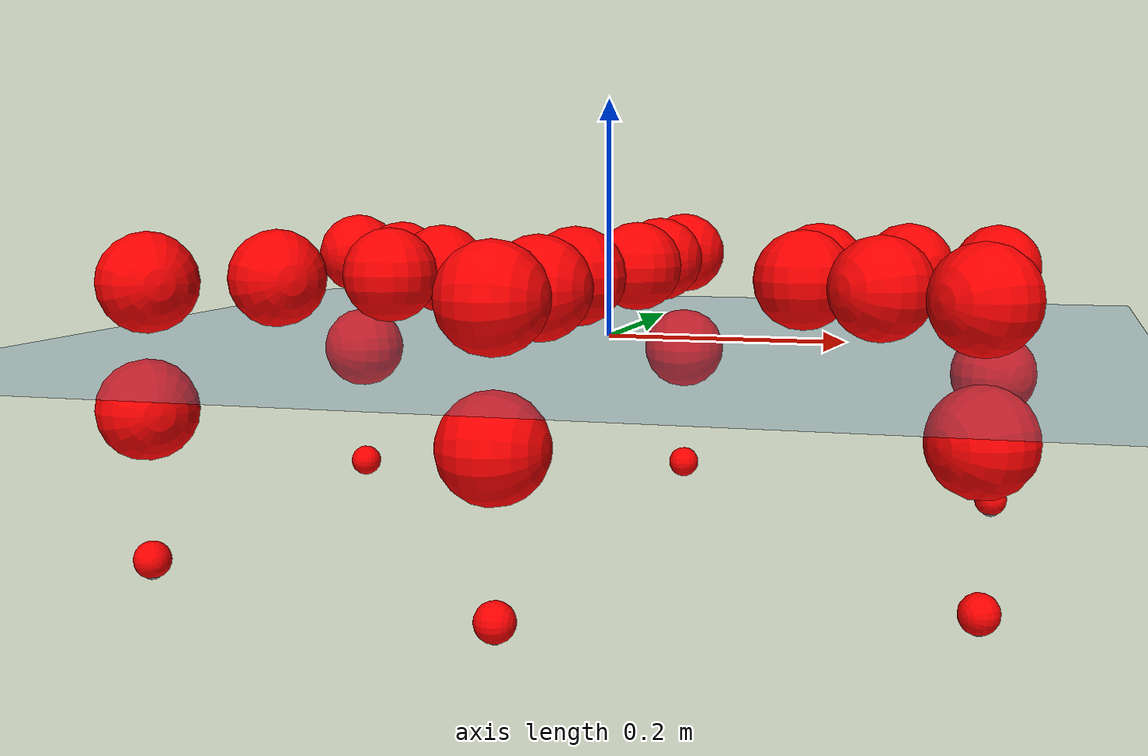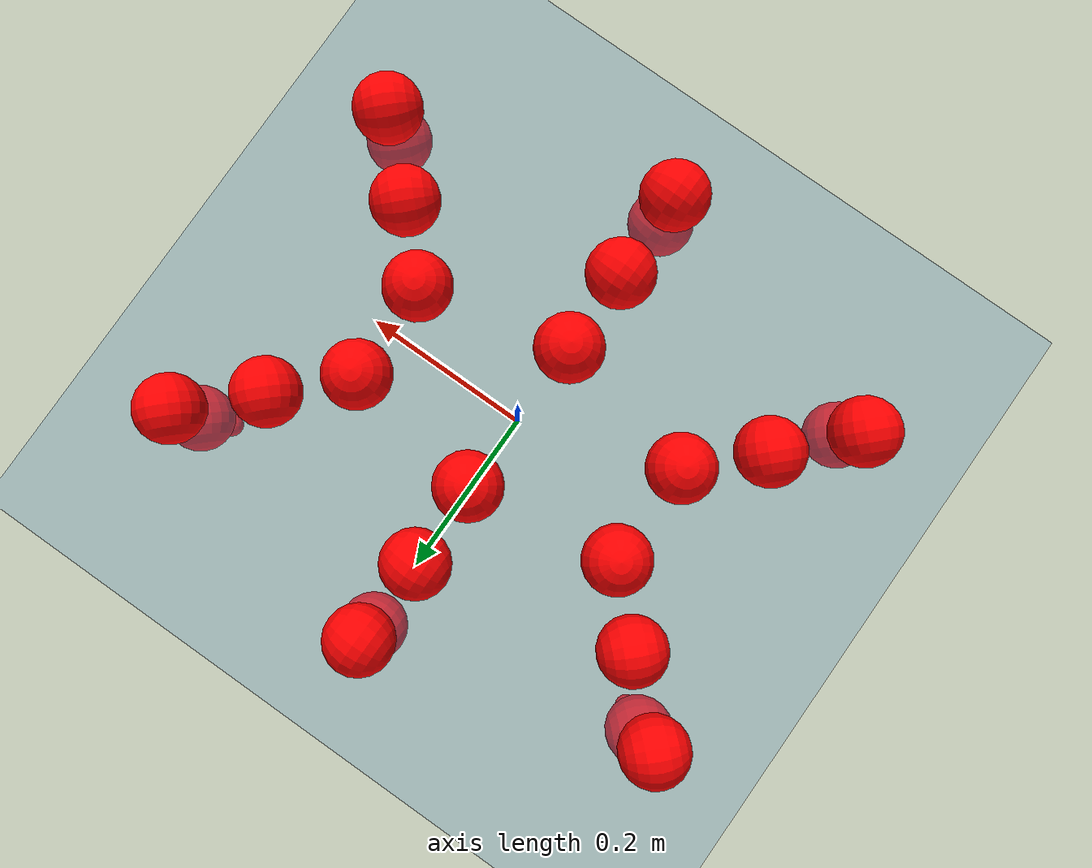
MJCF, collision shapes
<mujoco model="Golem">
  <compiler angle="radian" assetdir="assets" balanceinertia="true" inertiafromgeom="false"/>

  <option timestep="0.005" density="1.2" viscosity="2e-05"/>

  <size nkey="1"/>

  <visual>
    <quality shadowsize="8192"/>
    <map shadowclip="0.5"/>
  </visual>

  <default>
    <default class="/">
      <joint armature="0.01" damping="0.01" frictionloss="0.01"/>
      <geom contype="0" conaffinity="0" group="1" solref="-1000 -80"/>
      <site size="0.01 0.005 0.005" group="5"/>
      <general forcelimited="true" biastype="affine" gainprm="25" biasprm="0 -25 -0.5"/>
      <default class="visual">
        <geom type="mesh" group="2"/>
      </default>
      <default class="collision">
        <geom group="3"/>
      </default>
      <default class="foot">
        <geom size="0.01 0 0" condim="6" group="4" priority="1" solimp="0.015 1 0.01"/>
      </default>
      <default class="reward_collision_sphere">
        <geom group="5" rgba="1 0 0 1"/>
      </default>
    </default>
  </default>

  <asset>
    <texture type="skybox" colorspace="auto" name="//unnamed_texture_0" builtin="gradient" rgb1="0.95 0.95 0.95" rgb2="0.95 0.95 0.95" width="100" height="600"/>
    <texture type="2d" colorspace="auto" name="texplane" builtin="checker" rgb1="0.345 0.575 0.748" rgb2="0.345 0.575 0.748" markrgb="1 1 1" width="512" height="512"/>
    <material name="MatPlane" class="/" texture="texplane" texuniform="true" texrepeat="2 2" specular="0.9"/>
    <mesh name="body" class="/" file="body.stl" scale="0.001 0.001 0.001"/>
    <mesh name="coxa" class="/" file="coxa.stl" scale="0.001 0.001 0.001"/>
    <mesh name="femur" class="/" file="femur.stl" scale="0.001 0.001 0.001"/>
    <mesh name="tibia" class="/" file="tibia.stl" scale="0.001 0.001 0.001"/>
    <mesh name="tarsus" class="/" file="tarsus.stl" scale="0.001 0.001 0.001"/>
  </asset>

  <worldbody>
    <geom name="floor" class="/" size="100 100 0.125" type="plane" group="0" material="MatPlane"/>
    <light name="toplight_shadow" class="/" pos="0 0 5" dir="0.0990148 0.0990148 -0.990148" type="directional" ambient="0.04 0.04 0.04" diffuse="0.55 0.55 0.55" specular="0.12 0.12 0.12"/>
    <light name="toplight_fill" class="/" pos="0 0 5" dir="0.0990148 0.0990148 -0.990148" type="directional" castshadow="false" ambient="0.04 0.04 0.04" diffuse="0.3 0.3 0.3" specular="0.08 0.08 0.08"/>
    <body name="trunk" pos="-0.00204721 0.00222395 -0.00259461" quat="0.999999 0.000178422 -0.00126227 -0.000250516">
      <inertial pos="-2.50066e-05 0.00235237 -0.00727914" quat="0.999964 -0.00445973 0.00664279 0.00284157" mass="3.40957" diaginertia="0.0158783 0.00831944 0.00608381"/>
      <joint name="//unnamed_joint_0" type="free"/>
      <geom name="//unnamed_geom_1" class="/" pos="0 0 0.0584153" quat="1 0 0 0" type="mesh" rgba="0.9 0.9 0.9 1" mesh="body"/>
      <site name="imu" class="/" pos="0.149318 0.00979684 0.103027" size="0.00998458"/>
      <camera name="track" class="/" pos="0 -1.93763 0" quat="0.707107 0.707107 0 0" mode="trackcom"/>
      <camera name="ego_camera" class="/" pos="0.144797 0 0.0912738" quat="-0.5 -0.5 0.5 0.5"/>
      <body name="coxa_RR" pos="-0.198282 -0.0829021 0.0559772" quat="0.38308 0.00010288 -0.000217398 -0.923715">
        <inertial pos="0.000405597 -0.00143024 0.00056792" quat="0.99999 0.00293903 -0.00322629 -0.00105546" mass="0.191935" diaginertia="0.0168264 0.00817725 0.00639602"/>
        <joint name="coxa_joint_RR" class="/" pos="0 0 0" axis="0.00408079 0.0207408 -0.999777" range="-3.15618 3.12891" armature="0.0110306" damping="0.000973323" frictionloss="0.0102015"/>
        <geom name="//unnamed_geom_2" class="/" type="mesh" rgba="0.2 0.2 0.2 1" mesh="coxa"/>
        <geom name="//unnamed_geom_3" class="reward_collision_sphere" size="0.0399383" pos="-0.0334146 0 0"/>
        <body name="femur_RR" pos="0.0648912 0.00103966 0.000951944" quat="0.500217 -0.499551 0.500135 0.500098">
          <inertial pos="0.00268185 -0.00104024 -0.00135049" quat="0.999997 0.00100687 0.00161983 0.0011833" mass="0.196446" diaginertia="0.0168818 0.00860488 0.00658196"/>
          <joint name="femur_joint_RR" class="/" pos="0 0 0" axis="-0.00602967 0.00550551 -0.999967" range="-3.14228 3.19095" armature="0.00987671" damping="0" frictionloss="0.0110876"/>
          <geom name="//unnamed_geom_4" class="/" type="mesh" rgba="0.9 0.9 0.9 1" mesh="femur"/>
          <geom name="//unnamed_geom_5" class="reward_collision_sphere" size="0.0399383"/>
          <body name="tibia_RR" pos="-0.000968378 -0.105159 0.00400562" quat="0.000257182 1 8.304e-06 1.37832e-05">
            <inertial pos="-0.000605185 0.00289142 0.000348183" quat="0.999888 -0.0114428 0.00960308 -0.000989516" mass="0.19949" diaginertia="0.0169457 0.00866264 0.00655784"/>
            <joint name="tibia_joint_RR" class="/" pos="0 0 0" axis="0.00114793 0.00384519 0.999992" range="-3.12487 3.08701" armature="0.0103741" damping="0.0162161" frictionloss="0.00874368"/>
            <geom name="//unnamed_geom_6" class="/" type="mesh" rgba="0.2 0.2 0.2 1" mesh="tibia"/>
            <geom name="//unnamed_geom_7" class="reward_collision_sphere" size="0.0399383"/>
            <body name="tarsus_RR" pos="0.0993598 0.00330917 -0.00165363" quat="1 -0.000278178 0.000508225 0.000459077">
              <inertial pos="0.0675205 0.00132308 -0.0006287" quat="0.494263 0.500759 0.50674 0.498156" mass="0.192878" diaginertia="0.0161595 0.00843768 0.00630132"/>
              <joint name="tarsus_joint_RR" class="/" pos="0 0 0" axis="-0.000894586 -0.00218717 0.999997" range="-3.15451 3.0968" armature="0.00858638" damping="0.0145805" frictionloss="0.00979562"/>
              <geom name="//unnamed_geom_8" class="/" type="mesh" rgba="0.9 0.9 0.9 1" mesh="tarsus"/>
              <geom name="foot_1" class="foot" size="0.0106485" pos="0.124748 0 0" quat="0 -0.707107 0 0.707107"/>
              <geom name="//unnamed_geom_10" class="reward_collision_sphere" size="0.0399383"/>
              <geom name="//unnamed_geom_11" class="reward_collision_sphere" size="0.0149769" pos="0.119736 0 0"/>
              <site name="foot_1" class="foot" pos="0.124748 0 0" quat="0 -0.707107 0 0.707107" size="0.00998458"/>
            </body>
          </body>
        </body>
      </body>
      <body name="coxa_RM" pos="-7.34254e-05 -0.129915 0.0600312" quat="0.706373 0.000337657 -0.00178871 -0.707837">
        <inertial pos="0.000521235 -0.000611326 0.00123154" quat="0.999999 -0.001036 0.000634817 -0.000420318" mass="0.191748" diaginertia="0.0172494 0.00842281 0.00626321"/>
        <joint name="coxa_joint_RM" class="/" pos="0 0 0" axis="0.00370503 0.00826745 -0.999959" stiffness="0.00379558" range="-3.12456 3.15559" armature="0.0100628" damping="0.00677047" frictionloss="0.0112438"/>
        <geom name="//unnamed_geom_12" class="/" type="mesh" rgba="0.2 0.2 0.2 1" mesh="coxa"/>
        <geom name="//unnamed_geom_13" class="reward_collision_sphere" size="0.0399383" pos="-0.0334146 0 0"/>
        <body name="femur_RM" pos="0.0667658 0.00121434 -0.00194366" quat="0.4999 -0.500207 0.500651 0.499241">
          <inertial pos="-0.00280283 -0.00136034 -0.000876563" quat="0.999916 0.000969076 -0.0103018 -0.00776621" mass="0.204312" diaginertia="0.0179785 0.00870449 0.00671913"/>
          <joint name="femur_joint_RM" class="/" pos="0 0 0" axis="-0.000738797 0.000417813 -1" stiffness="0.00204466" range="-3.12727 3.18194" armature="0.0113195" damping="0.0117844" frictionloss="0.00915236"/>
          <geom name="//unnamed_geom_14" class="/" type="mesh" rgba="0.9 0.9 0.9 1" mesh="femur"/>
          <geom name="//unnamed_geom_15" class="reward_collision_sphere" size="0.0399383"/>
          <body name="tibia_RM" pos="-0.00130694 -0.105364 0.00110482" quat="-0.00032271 1 -0.000479355 -0.000156181">
            <inertial pos="-0.00111536 -0.00394797 0.000941876" quat="0.999979 -0.000128693 -0.00576708 0.00288599" mass="0.201227" diaginertia="0.0167778 0.00828778 0.00620149"/>
            <joint name="tibia_joint_RM" class="/" pos="0 0 0" axis="-0.00275711 -0.00767485 0.999967" range="-3.14172 3.15932" armature="0.00866693" damping="0" frictionloss="0.0100236"/>
            <geom name="//unnamed_geom_16" class="/" type="mesh" rgba="0.2 0.2 0.2 1" mesh="tibia"/>
            <geom name="//unnamed_geom_17" class="reward_collision_sphere" size="0.0399383"/>
            <body name="tarsus_RM" pos="0.101691 -0.0012515 0.000564211" quat="1 3.04284e-05 -0.000108451 -2.53309e-05">
              <inertial pos="0.065489 -0.000554111 0.00294081" quat="0.500393 0.499788 0.499844 0.499975" mass="0.188623" diaginertia="0.0170791 0.00834031 0.00603198"/>
              <joint name="tarsus_joint_RM" class="/" pos="0 0 0" axis="0.00823009 -0.0101998 0.999914" range="-3.13591 3.15479" armature="0.0104708" damping="0.00859266" frictionloss="0.0100828"/>
              <geom name="//unnamed_geom_18" class="/" type="mesh" rgba="0.9 0.9 0.9 1" mesh="tarsus"/>
              <geom name="foot_2" class="foot" size="0.0103565" pos="0.124748 0 0" quat="0 -0.707107 0 0.707107"/>
              <geom name="//unnamed_geom_20" class="reward_collision_sphere" size="0.0399383"/>
              <geom name="//unnamed_geom_21" class="reward_collision_sphere" size="0.0149769" pos="0.119736 0 0"/>
              <site name="foot_2" class="foot" pos="0.124748 0 0" quat="0 -0.707107 0 0.707107" size="0.00998458"/>
            </body>
          </body>
        </body>
      </body>
      <body name="coxa_RF" pos="0.198715 -0.0800871 0.0570504" quat="0.923936 0.00108194 -0.000870223 -0.382544">
        <inertial pos="-0.00242524 0.00231213 -0.000170682" quat="0.999943 0.00369965 0.00288633 0.00955081" mass="0.199586" diaginertia="0.016535 0.00848676 0.00628893"/>
        <joint name="coxa_joint_RF" class="/" pos="0 0 0" axis="0.00139391 0.00538159 -0.999985" stiffness="0.00390276" range="-3.19199 3.17435" armature="0.0104965" damping="0.00391997" frictionloss="0.0102172"/>
        <geom name="//unnamed_geom_22" class="/" type="mesh" rgba="0.2 0.2 0.2 1" mesh="coxa"/>
        <geom name="//unnamed_geom_23" class="reward_collision_sphere" size="0.0399383" pos="-0.0334146 0 0"/>
        <body name="femur_RF" pos="0.0636535 -0.0019595 -0.000333881" quat="0.500041 -0.500093 0.499977 0.499889">
          <inertial pos="-0.000159213 -0.00226785 0.00020402" quat="0.999913 -0.0111521 0.00703553 0.000934403" mass="0.196122" diaginertia="0.0160444 0.00811246 0.00588643"/>
          <joint name="femur_joint_RF" class="/" pos="0 0 0" axis="-0.00537712 -0.00263207 -0.999982" stiffness="0.00103518" range="-3.15613 3.09906" armature="0.01004" damping="0.000357392" frictionloss="0.00898518"/>
          <geom name="//unnamed_geom_24" class="/" type="mesh" rgba="0.9 0.9 0.9 1" mesh="femur"/>
          <geom name="//unnamed_geom_25" class="reward_collision_sphere" size="0.0399383"/>
          <body name="tibia_RF" pos="0.000499159 -0.106422 0.00188959" quat="-0.000308217 1 -5.2891e-05 -0.000338241">
            <inertial pos="-0.000237185 0.000409438 0.00348703" quat="0.999979 -0.00375725 -0.00206614 0.0049174" mass="0.195128" diaginertia="0.0160384 0.0084552 0.00609146"/>
            <joint name="tibia_joint_RF" class="/" pos="0 0 0" axis="-0.00848326 0.00607866 0.999946" range="-3.1336 3.17142" armature="0.00976456" damping="0.0100809" frictionloss="0.010748"/>
            <geom name="//unnamed_geom_26" class="/" type="mesh" rgba="0.2 0.2 0.2 1" mesh="tibia"/>
            <geom name="//unnamed_geom_27" class="reward_collision_sphere" size="0.0399383"/>
            <body name="tarsus_RF" pos="0.0975822 0.000351508 0.00101032" quat="1 4.28863e-05 2.88792e-05 5.53549e-06">
              <inertial pos="0.0648976 0.00239831 0.00244462" quat="0.499795 0.500251 0.498733 0.501218" mass="0.204299" diaginertia="0.0168353 0.00886399 0.00669006"/>
              <joint name="tarsus_joint_RF" class="/" pos="0 0 0" axis="-0.00558116 0.00406848 0.999976" stiffness="0.0291456" range="-3.14782 3.13116" armature="0.0112875" damping="0.0212515" frictionloss="0.0111133"/>
              <geom name="//unnamed_geom_28" class="/" type="mesh" rgba="0.9 0.9 0.9 1" mesh="tarsus"/>
              <geom name="foot_3" class="foot" size="0.0103614" pos="0.124748 0 0" quat="0 -0.707107 0 0.707107"/>
              <geom name="//unnamed_geom_30" class="reward_collision_sphere" size="0.0399383"/>
              <geom name="//unnamed_geom_31" class="reward_collision_sphere" size="0.0149769" pos="0.119736 0 0"/>
              <site name="foot_3" class="foot" pos="0.124748 0 0" quat="0 -0.707107 0 0.707107" size="0.00998458"/>
            </body>
          </body>
        </body>
      </body>
      <body name="coxa_LR" pos="-0.198334 0.0857349 0.0536513" quat="0.382946 0.0009121 -0.000162184 0.92377">
        <inertial pos="-0.000201789 0.000223937 0.00172014" quat="1 -0.000300234 0.000125151 -0.000349765" mass="0.20388" diaginertia="0.0162864 0.00849193 0.00660659"/>
        <joint name="coxa_joint_LR" class="/" pos="0 0 0" axis="0.00721835 -0.0046349 -0.999963" stiffness="0.00513672" range="-3.16908 3.18162" armature="0.0111096" damping="0" frictionloss="0.0101617"/>
        <geom name="//unnamed_geom_32" class="/" type="mesh" rgba="0.2 0.2 0.2 1" mesh="coxa"/>
        <geom name="//unnamed_geom_33" class="reward_collision_sphere" size="0.0399383" pos="-0.0334146 0 0"/>
        <body name="femur_LR" pos="0.0646684 -0.000997531 -0.000274444" quat="0.499292 -0.501396 0.499659 0.499651">
          <inertial pos="0.00125832 0.00416605 0.00164565" quat="1 0.000149698 0.0003062 0.000414393" mass="0.199817" diaginertia="0.01766 0.00855201 0.00656826"/>
          <joint name="femur_joint_LR" class="/" pos="0 0 0" axis="0.00234039 -0.000336198 0.999997" range="-3.17502 3.14724" armature="0.00929772" damping="0.0343338" frictionloss="0.0100437"/>
          <geom name="//unnamed_geom_34" class="/" type="mesh" rgba="0.9 0.9 0.9 1" mesh="femur"/>
          <geom name="//unnamed_geom_35" class="reward_collision_sphere" size="0.0399383"/>
          <body name="tibia_LR" pos="-0.00369789 -0.106419 0.00353055" quat="0.000120564 1 -0.00079237 -0.000128534">
            <inertial pos="0.00153173 0.000279904 -0.00107925" quat="0.999978 0.00204141 0.00625455 0.000310322" mass="0.209777" diaginertia="0.0178104 0.00865899 0.00651116"/>
            <joint name="tibia_joint_LR" class="/" pos="0 0 0" axis="0.0108061 -0.0103746 -0.999888" stiffness="0.0105681" range="-3.10766 3.09995" armature="0.0113059" damping="0" frictionloss="0.010032"/>
            <geom name="//unnamed_geom_36" class="/" type="mesh" rgba="0.2 0.2 0.2 1" mesh="tibia"/>
            <geom name="//unnamed_geom_37" class="reward_collision_sphere" size="0.0399383"/>
            <body name="tarsus_LR" pos="0.0971908 0.00104489 0.00378596" quat="1 4.91049e-06 8.84997e-05 8.16123e-05">
              <inertial pos="0.062232 0.00292464 0.00184628" quat="0.498762 0.50538 0.504986 0.49073" mass="0.196278" diaginertia="0.017449 0.0082535 0.00639498"/>
              <joint name="tarsus_joint_LR" class="/" pos="0 0 0" axis="0.00366572 -0.0089353 -0.999953" stiffness="0.00817515" range="-3.18598 3.11203" armature="0.00977529" damping="0.0144738" frictionloss="0.00933613"/>
              <geom name="//unnamed_geom_38" class="/" type="mesh" rgba="0.9 0.9 0.9 1" mesh="tarsus"/>
              <geom name="foot_4" class="foot" size="0.00853868" pos="0.124748 0 0" quat="0.707107 0 -0.707107 0"/>
              <geom name="//unnamed_geom_40" class="reward_collision_sphere" size="0.0399383"/>
              <geom name="//unnamed_geom_41" class="reward_collision_sphere" size="0.0149769" pos="0.119736 0 0"/>
              <site name="foot_4" class="foot" pos="0.124748 0 0" quat="0.707107 0 -0.707107 0" size="0.00998458"/>
            </body>
          </body>
        </body>
      </body>
      <body name="coxa_LM" pos="0.00325278 0.123562 0.0563229" quat="0.707365 -0.000141197 0.000236227 0.706849">
        <inertial pos="-0.00213944 -0.000305852 0.0027112" quat="0.999975 -0.00581884 -0.00382197 0.000958733" mass="0.192268" diaginertia="0.0169728 0.00813659 0.00604559"/>
        <joint name="coxa_joint_LM" class="/" pos="0 0 0" axis="0.0107768 0.0153671 -0.999824" range="-3.14737 3.18951" armature="0.0112211" damping="0.00501288" frictionloss="0.0105802"/>
        <geom name="//unnamed_geom_42" class="/" type="mesh" rgba="0.2 0.2 0.2 1" mesh="coxa"/>
        <geom name="//unnamed_geom_43" class="reward_collision_sphere" size="0.0399383" pos="-0.0334146 0 0"/>
        <body name="femur_LM" pos="0.0671896 0.00223491 0.000472562" quat="0.499835 -0.500091 0.50018 0.499894">
          <inertial pos="0.000354047 -0.00225608 -0.0027082" quat="1 7.13223e-05 -0.00016293 -0.000289541" mass="0.204341" diaginertia="0.0175193 0.00820979 0.0061135"/>
          <joint name="femur_joint_LM" class="/" pos="0 0 0" axis="-0.00140345 0.00184447 0.999997" stiffness="0.00976936" range="-3.08652 3.15835" armature="0.00889952" damping="0.0122332" frictionloss="0.00971532"/>
          <geom name="//unnamed_geom_44" class="/" type="mesh" rgba="0.9 0.9 0.9 1" mesh="femur"/>
          <geom name="//unnamed_geom_45" class="reward_collision_sphere" size="0.0399383"/>
          <body name="tibia_LM" pos="-0.00105811 -0.0998643 -0.00212394" quat="0.000243392 1 0.000335091 2.81981e-06">
            <inertial pos="0.00107047 -0.000518353 0.00121834" quat="0.999961 0.00261924 -0.00830924 -0.00159509" mass="0.193305" diaginertia="0.0167191 0.00797943 0.0059751"/>
            <joint name="tibia_joint_LM" class="/" pos="0 0 0" axis="-0.00397453 0.00794086 -0.999961" stiffness="0.0151683" range="-3.12639 3.13987" armature="0.0104119" damping="0.010763" frictionloss="0.0102673"/>
            <geom name="//unnamed_geom_46" class="/" type="mesh" rgba="0.2 0.2 0.2 1" mesh="tibia"/>
            <geom name="//unnamed_geom_47" class="reward_collision_sphere" size="0.0399383"/>
            <body name="tarsus_LM" pos="0.0987003 -0.000813799 -0.000382142" quat="1 0.000202597 0.000425921 0.000486995">
              <inertial pos="0.0678314 0.000247761 0.00171713" quat="0.497703 0.507885 0.498698 0.495625" mass="0.192414" diaginertia="0.0160789 0.00813989 0.00622602"/>
              <joint name="tarsus_joint_LM" class="/" pos="0 0 0" axis="-0.0149896 -0.00865868 -0.99985" range="-3.11633 3.12149" armature="0.00957337" damping="0.0169997" frictionloss="0.00913369"/>
              <geom name="//unnamed_geom_48" class="/" type="mesh" rgba="0.9 0.9 0.9 1" mesh="tarsus"/>
              <geom name="foot_5" class="foot" size="0.00986737" pos="0.124748 0 0" quat="0.707107 0 -0.707107 0"/>
              <geom name="//unnamed_geom_50" class="reward_collision_sphere" size="0.0399383"/>
              <geom name="//unnamed_geom_51" class="reward_collision_sphere" size="0.0149769" pos="0.119736 0 0"/>
              <site name="foot_5" class="foot" pos="0.124748 0 0" quat="0.707107 0 -0.707107 0" size="0.00998458"/>
            </body>
          </body>
        </body>
      </body>
      <body name="coxa_LF" pos="0.195986 0.0845219 0.057688" quat="0.923866 3.62524e-05 0.00121545 0.382715">
        <inertial pos="-0.00113976 -8.28357e-05 -0.0011875" quat="1 -0.000197616 -7.05431e-05 -4.33916e-05" mass="0.196377" diaginertia="0.0175321 0.00831508 0.00626683"/>
        <joint name="coxa_joint_LF" class="/" pos="0 0 0" axis="0.00262912 0.00105552 -0.999996" stiffness="0.00472474" range="-3.18073 3.14419" armature="0.0102738" damping="0.00499361" frictionloss="0.00799669"/>
        <geom name="//unnamed_geom_52" class="/" type="mesh" rgba="0.2 0.2 0.2 1" mesh="coxa"/>
        <geom name="//unnamed_geom_53" class="reward_collision_sphere" size="0.0399383" pos="-0.0334146 0 0"/>
        <body name="femur_LF" pos="0.0671262 0.00166252 -0.00191663" quat="0.499169 -0.500281 0.500583 0.499965">
          <inertial pos="0.00365796 0.00124973 -0.00409084" quat="0.999992 0.00148776 -0.00215837 -0.00291928" mass="0.194163" diaginertia="0.0167299 0.00870893 0.0062776"/>
          <joint name="femur_joint_LF" class="/" pos="0 0 0" axis="0.000532704 -0.00213006 0.999998" stiffness="0.00827939" range="-3.14048 3.13179" armature="0.0105807" damping="0.0169827" frictionloss="0.0112658"/>
          <geom name="//unnamed_geom_54" class="/" type="mesh" rgba="0.9 0.9 0.9 1" mesh="femur"/>
          <geom name="//unnamed_geom_55" class="reward_collision_sphere" size="0.0399383"/>
          <body name="tibia_LF" pos="0.00342742 -0.107623 -0.000325918" quat="9.99211e-05 1 0.000576863 -0.000193034">
            <inertial pos="-0.00209641 0.00363557 -0.00156483" quat="1 8.24665e-05 -2.33874e-05 -2.52734e-05" mass="0.21597" diaginertia="0.0187506 0.00904905 0.00688603"/>
            <joint name="tibia_joint_LF" class="/" pos="0 0 0" axis="-0.00152378 -0.00327103 -0.999993" range="-3.12574 3.17047" armature="0.0102739" damping="0.00428931" frictionloss="0.00971267"/>
            <geom name="//unnamed_geom_56" class="/" type="mesh" rgba="0.2 0.2 0.2 1" mesh="tibia"/>
            <geom name="//unnamed_geom_57" class="reward_collision_sphere" size="0.0399383"/>
            <body name="tarsus_LF" pos="0.0996632 0.000449453 -0.00306103" quat="0.999999 0.000859458 -0.000563987 0.000157808">
              <inertial pos="0.0694392 0.00176301 -0.00222566" quat="0.502113 0.497005 0.502498 0.498361" mass="0.208609" diaginertia="0.0184744 0.00898334 0.00681021"/>
              <joint name="tarsus_joint_LF" class="/" pos="0 0 0" axis="0.0123013 0.00327553 -0.999919" stiffness="0.00217377" range="-3.0929 3.1395" armature="0.00979653" damping="0.0222036" frictionloss="0.0116193"/>
              <geom name="//unnamed_geom_58" class="/" type="mesh" rgba="0.9 0.9 0.9 1" mesh="tarsus"/>
              <geom name="foot_6" class="foot" size="0.010942" pos="0.124748 0 0" quat="0.707107 0 -0.707107 0"/>
              <geom name="//unnamed_geom_60" class="reward_collision_sphere" size="0.0399383"/>
              <geom name="//unnamed_geom_61" class="reward_collision_sphere" size="0.0149769" pos="0.119736 0 0"/>
              <site name="foot_6" class="foot" pos="0.124748 0 0" quat="0.707107 0 -0.707107 0" size="0.00998458"/>
            </body>
          </body>
        </body>
      </body>
    </body>
  </worldbody>

  <contact>
    <pair class="/" geom1="floor" geom2="foot_1" name="//unnamed_contact_0"/>
    <pair class="/" geom1="floor" geom2="foot_2" name="//unnamed_contact_1"/>
    <pair class="/" geom1="floor" geom2="foot_3" name="//unnamed_contact_2"/>
    <pair class="/" geom1="floor" geom2="foot_4" name="//unnamed_contact_3"/>
    <pair class="/" geom1="floor" geom2="foot_5" name="//unnamed_contact_4"/>
    <pair class="/" geom1="floor" geom2="foot_6" name="//unnamed_contact_5"/>
  </contact>

  <actuator>
    <general name="coxa_joint_RR" class="/" joint="coxa_joint_RR" forcerange="-6.59227 6.59227" gainprm="23.7524" biasprm="0 -23.7524 -0.467831"/>
    <general name="femur_joint_RR" class="/" joint="femur_joint_RR" forcerange="-6.97792 6.97792" gainprm="23.7524" biasprm="0 -23.7524 -0.467831"/>
    <general name="tibia_joint_RR" class="/" joint="tibia_joint_RR" forcerange="-6.56744 6.56744" gainprm="23.7524" biasprm="0 -23.7524 -0.467831"/>
    <general name="tarsus_joint_RR" class="/" joint="tarsus_joint_RR" forcerange="-6.88828 6.88828" gainprm="23.7524" biasprm="0 -23.7524 -0.467831"/>
    <general name="coxa_joint_RM" class="/" joint="coxa_joint_RM" forcerange="-7.63527 7.63527" gainprm="23.7524" biasprm="0 -23.7524 -0.467831"/>
    <general name="femur_joint_RM" class="/" joint="femur_joint_RM" forcerange="-7.36348 7.36348" gainprm="23.7524" biasprm="0 -23.7524 -0.467831"/>
    <general name="tibia_joint_RM" class="/" joint="tibia_joint_RM" forcerange="-7.05124 7.05124" gainprm="23.7524" biasprm="0 -23.7524 -0.467831"/>
    <general name="tarsus_joint_RM" class="/" joint="tarsus_joint_RM" forcerange="-6.49902 6.49902" gainprm="23.7524" biasprm="0 -23.7524 -0.467831"/>
    <general name="coxa_joint_RF" class="/" joint="coxa_joint_RF" forcerange="-7.74697 7.74697" gainprm="23.7524" biasprm="0 -23.7524 -0.467831"/>
    <general name="femur_joint_RF" class="/" joint="femur_joint_RF" forcerange="-7.94348 7.94348" gainprm="23.7524" biasprm="0 -23.7524 -0.467831"/>
    <general name="tibia_joint_RF" class="/" joint="tibia_joint_RF" forcerange="-7.54032 7.54032" gainprm="23.7524" biasprm="0 -23.7524 -0.467831"/>
    <general name="tarsus_joint_RF" class="/" joint="tarsus_joint_RF" forcerange="-7.14544 7.14544" gainprm="23.7524" biasprm="0 -23.7524 -0.467831"/>
    <general name="coxa_joint_LR" class="/" joint="coxa_joint_LR" forcerange="-6.93259 6.93259" gainprm="23.7524" biasprm="0 -23.7524 -0.467831"/>
    <general name="femur_joint_LR" class="/" joint="femur_joint_LR" forcerange="-7.2349 7.2349" gainprm="23.7524" biasprm="0 -23.7524 -0.467831"/>
    <general name="tibia_joint_LR" class="/" joint="tibia_joint_LR" forcerange="-7.39396 7.39396" gainprm="23.7524" biasprm="0 -23.7524 -0.467831"/>
    <general name="tarsus_joint_LR" class="/" joint="tarsus_joint_LR" forcerange="-6.94528 6.94528" gainprm="23.7524" biasprm="0 -23.7524 -0.467831"/>
    <general name="coxa_joint_LM" class="/" joint="coxa_joint_LM" forcerange="-6.69003 6.69003" gainprm="23.7524" biasprm="0 -23.7524 -0.467831"/>
    <general name="femur_joint_LM" class="/" joint="femur_joint_LM" forcerange="-7.03378 7.03378" gainprm="23.7524" biasprm="0 -23.7524 -0.467831"/>
    <general name="tibia_joint_LM" class="/" joint="tibia_joint_LM" forcerange="-6.61385 6.61385" gainprm="23.7524" biasprm="0 -23.7524 -0.467831"/>
    <general name="tarsus_joint_LM" class="/" joint="tarsus_joint_LM" forcerange="-6.63601 6.63601" gainprm="23.7524" biasprm="0 -23.7524 -0.467831"/>
    <general name="coxa_joint_LF" class="/" joint="coxa_joint_LF" forcerange="-7.65187 7.65187" gainprm="23.7524" biasprm="0 -23.7524 -0.467831"/>
    <general name="femur_joint_LF" class="/" joint="femur_joint_LF" forcerange="-6.93602 6.93602" gainprm="23.7524" biasprm="0 -23.7524 -0.467831"/>
    <general name="tibia_joint_LF" class="/" joint="tibia_joint_LF" forcerange="-7.65291 7.65291" gainprm="23.7524" biasprm="0 -23.7524 -0.467831"/>
    <general name="tarsus_joint_LF" class="/" joint="tarsus_joint_LF" forcerange="-6.58791 6.58791" gainprm="23.7524" biasprm="0 -23.7524 -0.467831"/>
  </actuator>

  <sensor>
    <gyro site="imu" name="imu_angular_velocity"/>
    <velocimeter site="imu" name="imu_linear_velocity"/>
    <framelinvel objtype="site" objname="foot_1" name="foot_1_global_linear_velocity"/>
    <framelinvel objtype="site" objname="foot_2" name="foot_2_global_linear_velocity"/>
    <framelinvel objtype="site" objname="foot_3" name="foot_3_global_linear_velocity"/>
    <framelinvel objtype="site" objname="foot_4" name="foot_4_global_linear_velocity"/>
    <framelinvel objtype="site" objname="foot_5" name="foot_5_global_linear_velocity"/>
    <framelinvel objtype="site" objname="foot_6" name="foot_6_global_linear_velocity"/>
  </sensor>

  <keyframe>
    <key name="home" qpos="0 0 0.1457 1 0 0 0 0 0 0 0 0 0 0 0 0 0 0 0 0 0 0 0 0 0 0 0 0 0 0 0"/>
  </keyframe>
</mujoco>
